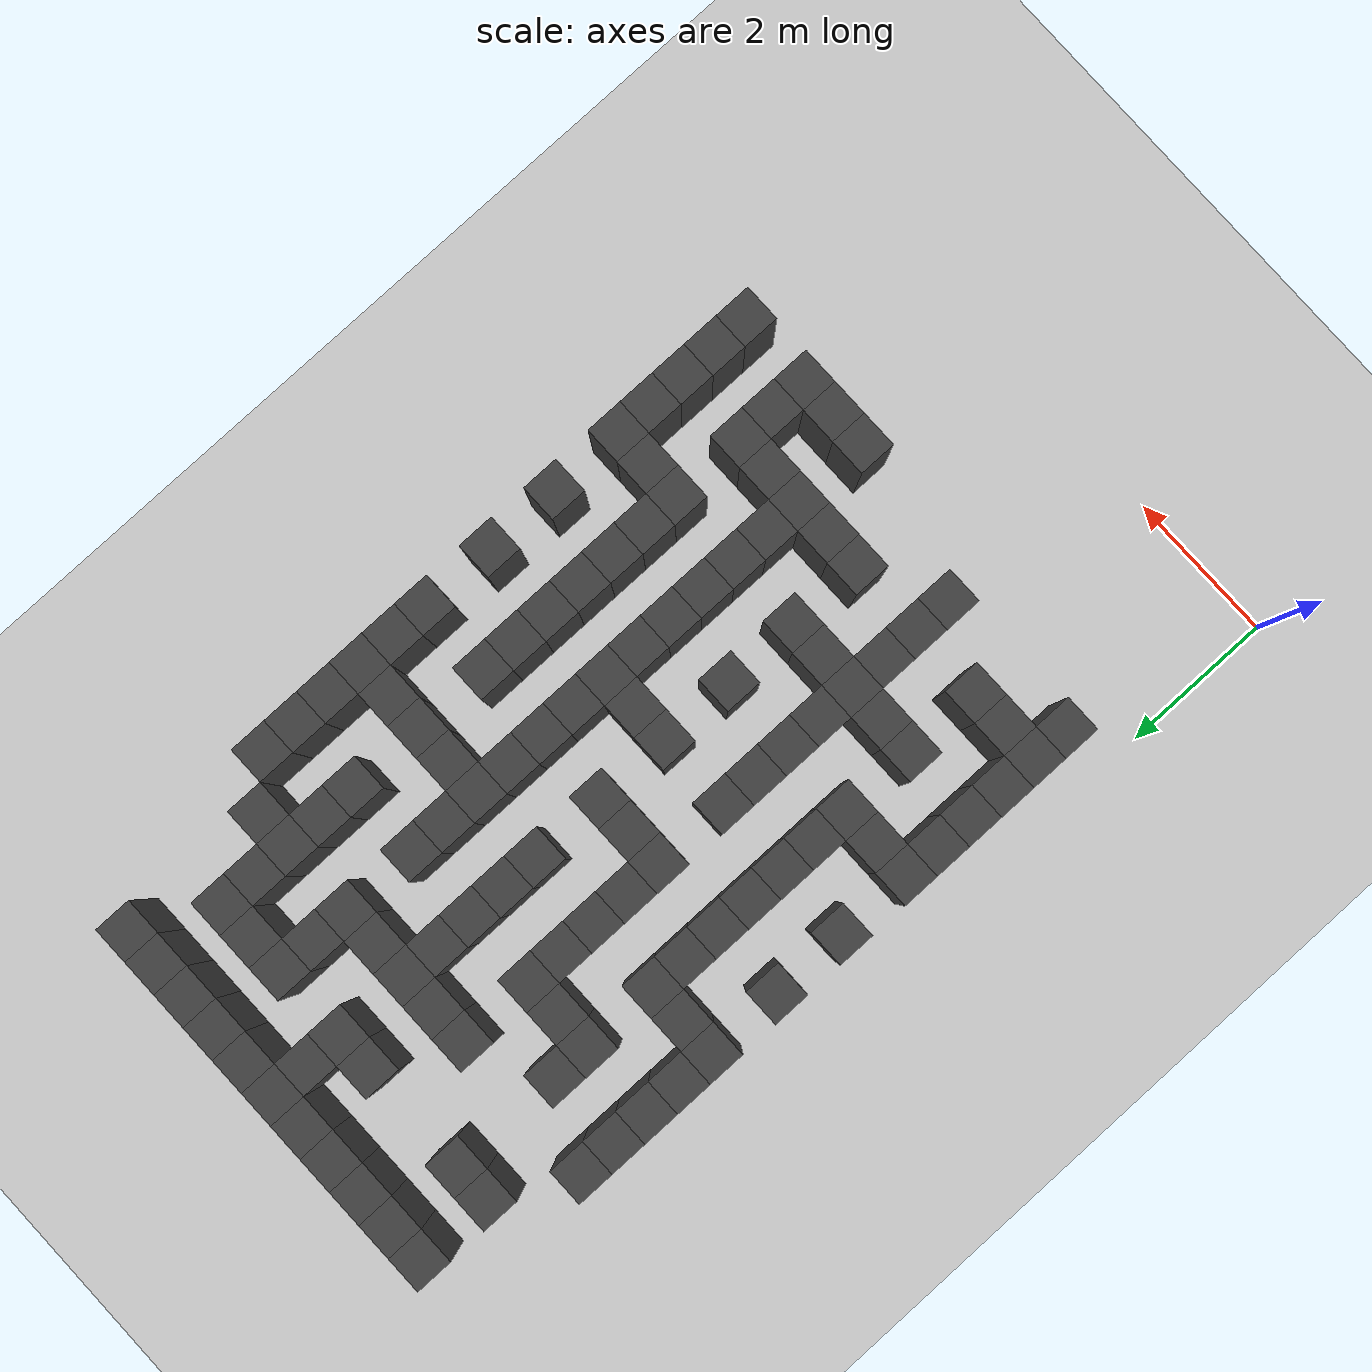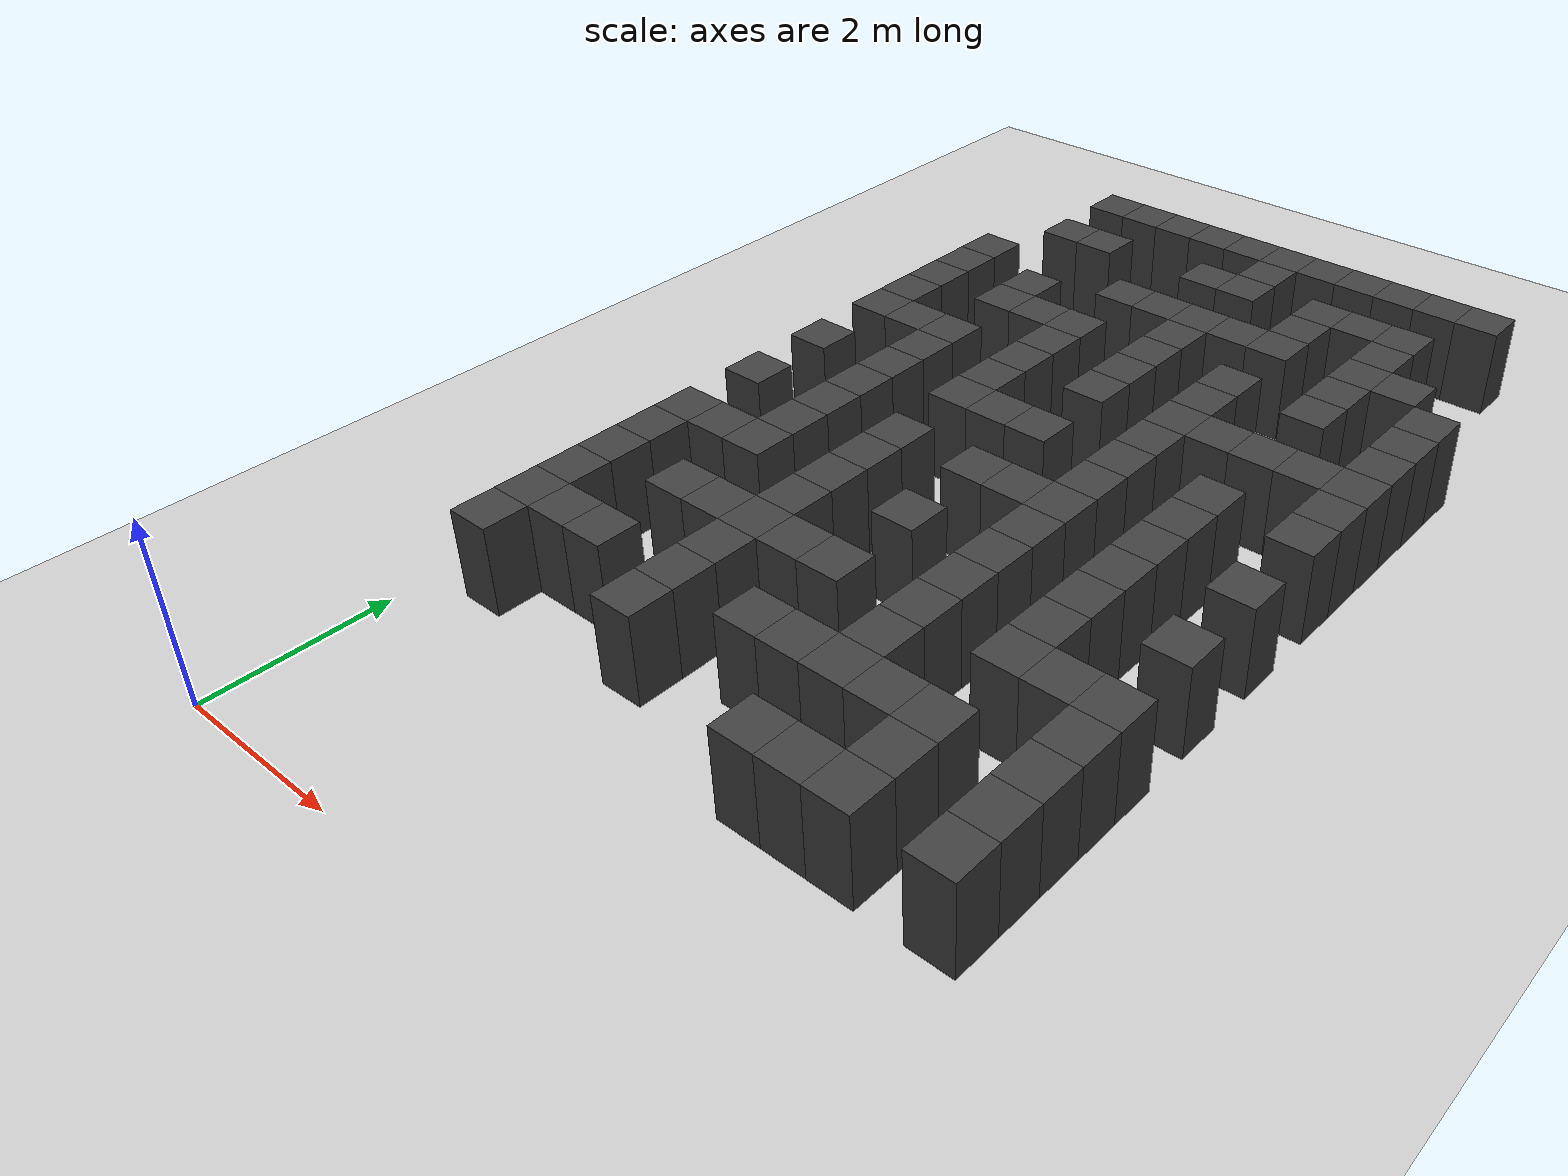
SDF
<sdf version="1.7">
 <world name="map_17663">
  <model name="ground_plane">
   <static>true</static>
   <link name="link">
    <collision name="collision">
     <geometry><plane><normal>0 0 1</normal><size>200 200</size></plane></geometry>
    </collision>
    <visual name="visual">
     <geometry><plane><normal>0 0 1</normal><size>200 200</size></plane></geometry>
     <material><ambient>0.8 0.8 0.8 1</ambient><diffuse>0.8 0.8 0.8 1</diffuse></material>
    </visual>
   </link>
  </model>
  <model name="maze_environment">
   <static>true</static>
   <link name="wall_27">
    <pose>1.250 12.250 0.500 0 0 0</pose>
    <collision name="col"><geometry><box><size>0.5 0.5 1.0</size></box></geometry></collision>
    <visual name="vis">
     <geometry><box><size>0.5 0.5 1.0</size></box></geometry>
     <material><ambient>0.15 0.15 0.15 1</ambient><diffuse>0.25 0.25 0.25 1</diffuse></material>
    </visual>
   </link>
   <link name="wall_28">
    <pose>1.750 12.250 0.500 0 0 0</pose>
    <collision name="col"><geometry><box><size>0.5 0.5 1.0</size></box></geometry></collision>
    <visual name="vis">
     <geometry><box><size>0.5 0.5 1.0</size></box></geometry>
     <material><ambient>0.15 0.15 0.15 1</ambient><diffuse>0.25 0.25 0.25 1</diffuse></material>
    </visual>
   </link>
   <link name="wall_29">
    <pose>2.250 12.250 0.500 0 0 0</pose>
    <collision name="col"><geometry><box><size>0.5 0.5 1.0</size></box></geometry></collision>
    <visual name="vis">
     <geometry><box><size>0.5 0.5 1.0</size></box></geometry>
     <material><ambient>0.15 0.15 0.15 1</ambient><diffuse>0.25 0.25 0.25 1</diffuse></material>
    </visual>
   </link>
   <link name="wall_30">
    <pose>2.750 12.250 0.500 0 0 0</pose>
    <collision name="col"><geometry><box><size>0.5 0.5 1.0</size></box></geometry></collision>
    <visual name="vis">
     <geometry><box><size>0.5 0.5 1.0</size></box></geometry>
     <material><ambient>0.15 0.15 0.15 1</ambient><diffuse>0.25 0.25 0.25 1</diffuse></material>
    </visual>
   </link>
   <link name="wall_31">
    <pose>3.250 12.250 0.500 0 0 0</pose>
    <collision name="col"><geometry><box><size>0.5 0.5 1.0</size></box></geometry></collision>
    <visual name="vis">
     <geometry><box><size>0.5 0.5 1.0</size></box></geometry>
     <material><ambient>0.15 0.15 0.15 1</ambient><diffuse>0.25 0.25 0.25 1</diffuse></material>
    </visual>
   </link>
   <link name="wall_32">
    <pose>3.750 12.250 0.500 0 0 0</pose>
    <collision name="col"><geometry><box><size>0.5 0.5 1.0</size></box></geometry></collision>
    <visual name="vis">
     <geometry><box><size>0.5 0.5 1.0</size></box></geometry>
     <material><ambient>0.15 0.15 0.15 1</ambient><diffuse>0.25 0.25 0.25 1</diffuse></material>
    </visual>
   </link>
   <link name="wall_33">
    <pose>4.250 12.250 0.500 0 0 0</pose>
    <collision name="col"><geometry><box><size>0.5 0.5 1.0</size></box></geometry></collision>
    <visual name="vis">
     <geometry><box><size>0.5 0.5 1.0</size></box></geometry>
     <material><ambient>0.15 0.15 0.15 1</ambient><diffuse>0.25 0.25 0.25 1</diffuse></material>
    </visual>
   </link>
   <link name="wall_34">
    <pose>4.750 12.250 0.500 0 0 0</pose>
    <collision name="col"><geometry><box><size>0.5 0.5 1.0</size></box></geometry></collision>
    <visual name="vis">
     <geometry><box><size>0.5 0.5 1.0</size></box></geometry>
     <material><ambient>0.15 0.15 0.15 1</ambient><diffuse>0.25 0.25 0.25 1</diffuse></material>
    </visual>
   </link>
   <link name="wall_35">
    <pose>5.250 12.250 0.500 0 0 0</pose>
    <collision name="col"><geometry><box><size>0.5 0.5 1.0</size></box></geometry></collision>
    <visual name="vis">
     <geometry><box><size>0.5 0.5 1.0</size></box></geometry>
     <material><ambient>0.15 0.15 0.15 1</ambient><diffuse>0.25 0.25 0.25 1</diffuse></material>
    </visual>
   </link>
   <link name="wall_36">
    <pose>5.750 12.250 0.500 0 0 0</pose>
    <collision name="col"><geometry><box><size>0.5 0.5 1.0</size></box></geometry></collision>
    <visual name="vis">
     <geometry><box><size>0.5 0.5 1.0</size></box></geometry>
     <material><ambient>0.15 0.15 0.15 1</ambient><diffuse>0.25 0.25 0.25 1</diffuse></material>
    </visual>
   </link>
   <link name="wall_37">
    <pose>6.250 12.250 0.500 0 0 0</pose>
    <collision name="col"><geometry><box><size>0.5 0.5 1.0</size></box></geometry></collision>
    <visual name="vis">
     <geometry><box><size>0.5 0.5 1.0</size></box></geometry>
     <material><ambient>0.15 0.15 0.15 1</ambient><diffuse>0.25 0.25 0.25 1</diffuse></material>
    </visual>
   </link>
   <link name="wall_55">
    <pose>3.750 11.750 0.500 0 0 0</pose>
    <collision name="col"><geometry><box><size>0.5 0.5 1.0</size></box></geometry></collision>
    <visual name="vis">
     <geometry><box><size>0.5 0.5 1.0</size></box></geometry>
     <material><ambient>0.15 0.15 0.15 1</ambient><diffuse>0.25 0.25 0.25 1</diffuse></material>
    </visual>
   </link>
   <link name="wall_76">
    <pose>1.250 11.250 0.500 0 0 0</pose>
    <collision name="col"><geometry><box><size>0.5 0.5 1.0</size></box></geometry></collision>
    <visual name="vis">
     <geometry><box><size>0.5 0.5 1.0</size></box></geometry>
     <material><ambient>0.15 0.15 0.15 1</ambient><diffuse>0.25 0.25 0.25 1</diffuse></material>
    </visual>
   </link>
   <link name="wall_77">
    <pose>1.750 11.250 0.500 0 0 0</pose>
    <collision name="col"><geometry><box><size>0.5 0.5 1.0</size></box></geometry></collision>
    <visual name="vis">
     <geometry><box><size>0.5 0.5 1.0</size></box></geometry>
     <material><ambient>0.15 0.15 0.15 1</ambient><diffuse>0.25 0.25 0.25 1</diffuse></material>
    </visual>
   </link>
   <link name="wall_78">
    <pose>3.250 11.250 0.500 0 0 0</pose>
    <collision name="col"><geometry><box><size>0.5 0.5 1.0</size></box></geometry></collision>
    <visual name="vis">
     <geometry><box><size>0.5 0.5 1.0</size></box></geometry>
     <material><ambient>0.15 0.15 0.15 1</ambient><diffuse>0.25 0.25 0.25 1</diffuse></material>
    </visual>
   </link>
   <link name="wall_79">
    <pose>3.750 11.250 0.500 0 0 0</pose>
    <collision name="col"><geometry><box><size>0.5 0.5 1.0</size></box></geometry></collision>
    <visual name="vis">
     <geometry><box><size>0.5 0.5 1.0</size></box></geometry>
     <material><ambient>0.15 0.15 0.15 1</ambient><diffuse>0.25 0.25 0.25 1</diffuse></material>
    </visual>
   </link>
   <link name="wall_80">
    <pose>4.750 11.250 0.500 0 0 0</pose>
    <collision name="col"><geometry><box><size>0.5 0.5 1.0</size></box></geometry></collision>
    <visual name="vis">
     <geometry><box><size>0.5 0.5 1.0</size></box></geometry>
     <material><ambient>0.15 0.15 0.15 1</ambient><diffuse>0.25 0.25 0.25 1</diffuse></material>
    </visual>
   </link>
   <link name="wall_81">
    <pose>5.250 11.250 0.500 0 0 0</pose>
    <collision name="col"><geometry><box><size>0.5 0.5 1.0</size></box></geometry></collision>
    <visual name="vis">
     <geometry><box><size>0.5 0.5 1.0</size></box></geometry>
     <material><ambient>0.15 0.15 0.15 1</ambient><diffuse>0.25 0.25 0.25 1</diffuse></material>
    </visual>
   </link>
   <link name="wall_82">
    <pose>5.750 11.250 0.500 0 0 0</pose>
    <collision name="col"><geometry><box><size>0.5 0.5 1.0</size></box></geometry></collision>
    <visual name="vis">
     <geometry><box><size>0.5 0.5 1.0</size></box></geometry>
     <material><ambient>0.15 0.15 0.15 1</ambient><diffuse>0.25 0.25 0.25 1</diffuse></material>
    </visual>
   </link>
   <link name="wall_99">
    <pose>4.750 10.750 0.500 0 0 0</pose>
    <collision name="col"><geometry><box><size>0.5 0.5 1.0</size></box></geometry></collision>
    <visual name="vis">
     <geometry><box><size>0.5 0.5 1.0</size></box></geometry>
     <material><ambient>0.15 0.15 0.15 1</ambient><diffuse>0.25 0.25 0.25 1</diffuse></material>
    </visual>
   </link>
   <link name="wall_100">
    <pose>5.750 10.750 0.500 0 0 0</pose>
    <collision name="col"><geometry><box><size>0.5 0.5 1.0</size></box></geometry></collision>
    <visual name="vis">
     <geometry><box><size>0.5 0.5 1.0</size></box></geometry>
     <material><ambient>0.15 0.15 0.15 1</ambient><diffuse>0.25 0.25 0.25 1</diffuse></material>
    </visual>
   </link>
   <link name="wall_122">
    <pose>0.750 10.250 0.500 0 0 0</pose>
    <collision name="col"><geometry><box><size>0.5 0.5 1.0</size></box></geometry></collision>
    <visual name="vis">
     <geometry><box><size>0.5 0.5 1.0</size></box></geometry>
     <material><ambient>0.15 0.15 0.15 1</ambient><diffuse>0.25 0.25 0.25 1</diffuse></material>
    </visual>
   </link>
   <link name="wall_123">
    <pose>2.750 10.250 0.500 0 0 0</pose>
    <collision name="col"><geometry><box><size>0.5 0.5 1.0</size></box></geometry></collision>
    <visual name="vis">
     <geometry><box><size>0.5 0.5 1.0</size></box></geometry>
     <material><ambient>0.15 0.15 0.15 1</ambient><diffuse>0.25 0.25 0.25 1</diffuse></material>
    </visual>
   </link>
   <link name="wall_124">
    <pose>3.250 10.250 0.500 0 0 0</pose>
    <collision name="col"><geometry><box><size>0.5 0.5 1.0</size></box></geometry></collision>
    <visual name="vis">
     <geometry><box><size>0.5 0.5 1.0</size></box></geometry>
     <material><ambient>0.15 0.15 0.15 1</ambient><diffuse>0.25 0.25 0.25 1</diffuse></material>
    </visual>
   </link>
   <link name="wall_125">
    <pose>3.750 10.250 0.500 0 0 0</pose>
    <collision name="col"><geometry><box><size>0.5 0.5 1.0</size></box></geometry></collision>
    <visual name="vis">
     <geometry><box><size>0.5 0.5 1.0</size></box></geometry>
     <material><ambient>0.15 0.15 0.15 1</ambient><diffuse>0.25 0.25 0.25 1</diffuse></material>
    </visual>
   </link>
   <link name="wall_126">
    <pose>4.250 10.250 0.500 0 0 0</pose>
    <collision name="col"><geometry><box><size>0.5 0.5 1.0</size></box></geometry></collision>
    <visual name="vis">
     <geometry><box><size>0.5 0.5 1.0</size></box></geometry>
     <material><ambient>0.15 0.15 0.15 1</ambient><diffuse>0.25 0.25 0.25 1</diffuse></material>
    </visual>
   </link>
   <link name="wall_127">
    <pose>4.750 10.250 0.500 0 0 0</pose>
    <collision name="col"><geometry><box><size>0.5 0.5 1.0</size></box></geometry></collision>
    <visual name="vis">
     <geometry><box><size>0.5 0.5 1.0</size></box></geometry>
     <material><ambient>0.15 0.15 0.15 1</ambient><diffuse>0.25 0.25 0.25 1</diffuse></material>
    </visual>
   </link>
   <link name="wall_128">
    <pose>5.750 10.250 0.500 0 0 0</pose>
    <collision name="col"><geometry><box><size>0.5 0.5 1.0</size></box></geometry></collision>
    <visual name="vis">
     <geometry><box><size>0.5 0.5 1.0</size></box></geometry>
     <material><ambient>0.15 0.15 0.15 1</ambient><diffuse>0.25 0.25 0.25 1</diffuse></material>
    </visual>
   </link>
   <link name="wall_129">
    <pose>6.250 10.250 0.500 0 0 0</pose>
    <collision name="col"><geometry><box><size>0.5 0.5 1.0</size></box></geometry></collision>
    <visual name="vis">
     <geometry><box><size>0.5 0.5 1.0</size></box></geometry>
     <material><ambient>0.15 0.15 0.15 1</ambient><diffuse>0.25 0.25 0.25 1</diffuse></material>
    </visual>
   </link>
   <link name="wall_146">
    <pose>0.750 9.750 0.500 0 0 0</pose>
    <collision name="col"><geometry><box><size>0.5 0.5 1.0</size></box></geometry></collision>
    <visual name="vis">
     <geometry><box><size>0.5 0.5 1.0</size></box></geometry>
     <material><ambient>0.15 0.15 0.15 1</ambient><diffuse>0.25 0.25 0.25 1</diffuse></material>
    </visual>
   </link>
   <link name="wall_147">
    <pose>1.750 9.750 0.500 0 0 0</pose>
    <collision name="col"><geometry><box><size>0.5 0.5 1.0</size></box></geometry></collision>
    <visual name="vis">
     <geometry><box><size>0.5 0.5 1.0</size></box></geometry>
     <material><ambient>0.15 0.15 0.15 1</ambient><diffuse>0.25 0.25 0.25 1</diffuse></material>
    </visual>
   </link>
   <link name="wall_148">
    <pose>3.750 9.750 0.500 0 0 0</pose>
    <collision name="col"><geometry><box><size>0.5 0.5 1.0</size></box></geometry></collision>
    <visual name="vis">
     <geometry><box><size>0.5 0.5 1.0</size></box></geometry>
     <material><ambient>0.15 0.15 0.15 1</ambient><diffuse>0.25 0.25 0.25 1</diffuse></material>
    </visual>
   </link>
   <link name="wall_149">
    <pose>5.750 9.750 0.500 0 0 0</pose>
    <collision name="col"><geometry><box><size>0.5 0.5 1.0</size></box></geometry></collision>
    <visual name="vis">
     <geometry><box><size>0.5 0.5 1.0</size></box></geometry>
     <material><ambient>0.15 0.15 0.15 1</ambient><diffuse>0.25 0.25 0.25 1</diffuse></material>
    </visual>
   </link>
   <link name="wall_150">
    <pose>6.750 9.750 0.500 0 0 0</pose>
    <collision name="col"><geometry><box><size>0.5 0.5 1.0</size></box></geometry></collision>
    <visual name="vis">
     <geometry><box><size>0.5 0.5 1.0</size></box></geometry>
     <material><ambient>0.15 0.15 0.15 1</ambient><diffuse>0.25 0.25 0.25 1</diffuse></material>
    </visual>
   </link>
   <link name="wall_173">
    <pose>0.750 9.250 0.500 0 0 0</pose>
    <collision name="col"><geometry><box><size>0.5 0.5 1.0</size></box></geometry></collision>
    <visual name="vis">
     <geometry><box><size>0.5 0.5 1.0</size></box></geometry>
     <material><ambient>0.15 0.15 0.15 1</ambient><diffuse>0.25 0.25 0.25 1</diffuse></material>
    </visual>
   </link>
   <link name="wall_174">
    <pose>1.750 9.250 0.500 0 0 0</pose>
    <collision name="col"><geometry><box><size>0.5 0.5 1.0</size></box></geometry></collision>
    <visual name="vis">
     <geometry><box><size>0.5 0.5 1.0</size></box></geometry>
     <material><ambient>0.15 0.15 0.15 1</ambient><diffuse>0.25 0.25 0.25 1</diffuse></material>
    </visual>
   </link>
   <link name="wall_175">
    <pose>2.250 9.250 0.500 0 0 0</pose>
    <collision name="col"><geometry><box><size>0.5 0.5 1.0</size></box></geometry></collision>
    <visual name="vis">
     <geometry><box><size>0.5 0.5 1.0</size></box></geometry>
     <material><ambient>0.15 0.15 0.15 1</ambient><diffuse>0.25 0.25 0.25 1</diffuse></material>
    </visual>
   </link>
   <link name="wall_176">
    <pose>2.750 9.250 0.500 0 0 0</pose>
    <collision name="col"><geometry><box><size>0.5 0.5 1.0</size></box></geometry></collision>
    <visual name="vis">
     <geometry><box><size>0.5 0.5 1.0</size></box></geometry>
     <material><ambient>0.15 0.15 0.15 1</ambient><diffuse>0.25 0.25 0.25 1</diffuse></material>
    </visual>
   </link>
   <link name="wall_177">
    <pose>3.750 9.250 0.500 0 0 0</pose>
    <collision name="col"><geometry><box><size>0.5 0.5 1.0</size></box></geometry></collision>
    <visual name="vis">
     <geometry><box><size>0.5 0.5 1.0</size></box></geometry>
     <material><ambient>0.15 0.15 0.15 1</ambient><diffuse>0.25 0.25 0.25 1</diffuse></material>
    </visual>
   </link>
   <link name="wall_178">
    <pose>4.750 9.250 0.500 0 0 0</pose>
    <collision name="col"><geometry><box><size>0.5 0.5 1.0</size></box></geometry></collision>
    <visual name="vis">
     <geometry><box><size>0.5 0.5 1.0</size></box></geometry>
     <material><ambient>0.15 0.15 0.15 1</ambient><diffuse>0.25 0.25 0.25 1</diffuse></material>
    </visual>
   </link>
   <link name="wall_179">
    <pose>5.750 9.250 0.500 0 0 0</pose>
    <collision name="col"><geometry><box><size>0.5 0.5 1.0</size></box></geometry></collision>
    <visual name="vis">
     <geometry><box><size>0.5 0.5 1.0</size></box></geometry>
     <material><ambient>0.15 0.15 0.15 1</ambient><diffuse>0.25 0.25 0.25 1</diffuse></material>
    </visual>
   </link>
   <link name="wall_180">
    <pose>6.750 9.250 0.500 0 0 0</pose>
    <collision name="col"><geometry><box><size>0.5 0.5 1.0</size></box></geometry></collision>
    <visual name="vis">
     <geometry><box><size>0.5 0.5 1.0</size></box></geometry>
     <material><ambient>0.15 0.15 0.15 1</ambient><diffuse>0.25 0.25 0.25 1</diffuse></material>
    </visual>
   </link>
   <link name="wall_194">
    <pose>0.750 8.750 0.500 0 0 0</pose>
    <collision name="col"><geometry><box><size>0.5 0.5 1.0</size></box></geometry></collision>
    <visual name="vis">
     <geometry><box><size>0.5 0.5 1.0</size></box></geometry>
     <material><ambient>0.15 0.15 0.15 1</ambient><diffuse>0.25 0.25 0.25 1</diffuse></material>
    </visual>
   </link>
   <link name="wall_195">
    <pose>2.750 8.750 0.500 0 0 0</pose>
    <collision name="col"><geometry><box><size>0.5 0.5 1.0</size></box></geometry></collision>
    <visual name="vis">
     <geometry><box><size>0.5 0.5 1.0</size></box></geometry>
     <material><ambient>0.15 0.15 0.15 1</ambient><diffuse>0.25 0.25 0.25 1</diffuse></material>
    </visual>
   </link>
   <link name="wall_196">
    <pose>3.750 8.750 0.500 0 0 0</pose>
    <collision name="col"><geometry><box><size>0.5 0.5 1.0</size></box></geometry></collision>
    <visual name="vis">
     <geometry><box><size>0.5 0.5 1.0</size></box></geometry>
     <material><ambient>0.15 0.15 0.15 1</ambient><diffuse>0.25 0.25 0.25 1</diffuse></material>
    </visual>
   </link>
   <link name="wall_197">
    <pose>4.750 8.750 0.500 0 0 0</pose>
    <collision name="col"><geometry><box><size>0.5 0.5 1.0</size></box></geometry></collision>
    <visual name="vis">
     <geometry><box><size>0.5 0.5 1.0</size></box></geometry>
     <material><ambient>0.15 0.15 0.15 1</ambient><diffuse>0.25 0.25 0.25 1</diffuse></material>
    </visual>
   </link>
   <link name="wall_198">
    <pose>6.750 8.750 0.500 0 0 0</pose>
    <collision name="col"><geometry><box><size>0.5 0.5 1.0</size></box></geometry></collision>
    <visual name="vis">
     <geometry><box><size>0.5 0.5 1.0</size></box></geometry>
     <material><ambient>0.15 0.15 0.15 1</ambient><diffuse>0.25 0.25 0.25 1</diffuse></material>
    </visual>
   </link>
   <link name="wall_223">
    <pose>0.750 8.250 0.500 0 0 0</pose>
    <collision name="col"><geometry><box><size>0.5 0.5 1.0</size></box></geometry></collision>
    <visual name="vis">
     <geometry><box><size>0.5 0.5 1.0</size></box></geometry>
     <material><ambient>0.15 0.15 0.15 1</ambient><diffuse>0.25 0.25 0.25 1</diffuse></material>
    </visual>
   </link>
   <link name="wall_224">
    <pose>1.250 8.250 0.500 0 0 0</pose>
    <collision name="col"><geometry><box><size>0.5 0.5 1.0</size></box></geometry></collision>
    <visual name="vis">
     <geometry><box><size>0.5 0.5 1.0</size></box></geometry>
     <material><ambient>0.15 0.15 0.15 1</ambient><diffuse>0.25 0.25 0.25 1</diffuse></material>
    </visual>
   </link>
   <link name="wall_225">
    <pose>1.750 8.250 0.500 0 0 0</pose>
    <collision name="col"><geometry><box><size>0.5 0.5 1.0</size></box></geometry></collision>
    <visual name="vis">
     <geometry><box><size>0.5 0.5 1.0</size></box></geometry>
     <material><ambient>0.15 0.15 0.15 1</ambient><diffuse>0.25 0.25 0.25 1</diffuse></material>
    </visual>
   </link>
   <link name="wall_226">
    <pose>2.750 8.250 0.500 0 0 0</pose>
    <collision name="col"><geometry><box><size>0.5 0.5 1.0</size></box></geometry></collision>
    <visual name="vis">
     <geometry><box><size>0.5 0.5 1.0</size></box></geometry>
     <material><ambient>0.15 0.15 0.15 1</ambient><diffuse>0.25 0.25 0.25 1</diffuse></material>
    </visual>
   </link>
   <link name="wall_227">
    <pose>3.750 8.250 0.500 0 0 0</pose>
    <collision name="col"><geometry><box><size>0.5 0.5 1.0</size></box></geometry></collision>
    <visual name="vis">
     <geometry><box><size>0.5 0.5 1.0</size></box></geometry>
     <material><ambient>0.15 0.15 0.15 1</ambient><diffuse>0.25 0.25 0.25 1</diffuse></material>
    </visual>
   </link>
   <link name="wall_228">
    <pose>4.750 8.250 0.500 0 0 0</pose>
    <collision name="col"><geometry><box><size>0.5 0.5 1.0</size></box></geometry></collision>
    <visual name="vis">
     <geometry><box><size>0.5 0.5 1.0</size></box></geometry>
     <material><ambient>0.15 0.15 0.15 1</ambient><diffuse>0.25 0.25 0.25 1</diffuse></material>
    </visual>
   </link>
   <link name="wall_229">
    <pose>5.250 8.250 0.500 0 0 0</pose>
    <collision name="col"><geometry><box><size>0.5 0.5 1.0</size></box></geometry></collision>
    <visual name="vis">
     <geometry><box><size>0.5 0.5 1.0</size></box></geometry>
     <material><ambient>0.15 0.15 0.15 1</ambient><diffuse>0.25 0.25 0.25 1</diffuse></material>
    </visual>
   </link>
   <link name="wall_230">
    <pose>5.750 8.250 0.500 0 0 0</pose>
    <collision name="col"><geometry><box><size>0.5 0.5 1.0</size></box></geometry></collision>
    <visual name="vis">
     <geometry><box><size>0.5 0.5 1.0</size></box></geometry>
     <material><ambient>0.15 0.15 0.15 1</ambient><diffuse>0.25 0.25 0.25 1</diffuse></material>
    </visual>
   </link>
   <link name="wall_231">
    <pose>6.250 8.250 0.500 0 0 0</pose>
    <collision name="col"><geometry><box><size>0.5 0.5 1.0</size></box></geometry></collision>
    <visual name="vis">
     <geometry><box><size>0.5 0.5 1.0</size></box></geometry>
     <material><ambient>0.15 0.15 0.15 1</ambient><diffuse>0.25 0.25 0.25 1</diffuse></material>
    </visual>
   </link>
   <link name="wall_232">
    <pose>6.750 8.250 0.500 0 0 0</pose>
    <collision name="col"><geometry><box><size>0.5 0.5 1.0</size></box></geometry></collision>
    <visual name="vis">
     <geometry><box><size>0.5 0.5 1.0</size></box></geometry>
     <material><ambient>0.15 0.15 0.15 1</ambient><diffuse>0.25 0.25 0.25 1</diffuse></material>
    </visual>
   </link>
   <link name="wall_246">
    <pose>1.750 7.750 0.500 0 0 0</pose>
    <collision name="col"><geometry><box><size>0.5 0.5 1.0</size></box></geometry></collision>
    <visual name="vis">
     <geometry><box><size>0.5 0.5 1.0</size></box></geometry>
     <material><ambient>0.15 0.15 0.15 1</ambient><diffuse>0.25 0.25 0.25 1</diffuse></material>
    </visual>
   </link>
   <link name="wall_247">
    <pose>2.750 7.750 0.500 0 0 0</pose>
    <collision name="col"><geometry><box><size>0.5 0.5 1.0</size></box></geometry></collision>
    <visual name="vis">
     <geometry><box><size>0.5 0.5 1.0</size></box></geometry>
     <material><ambient>0.15 0.15 0.15 1</ambient><diffuse>0.25 0.25 0.25 1</diffuse></material>
    </visual>
   </link>
   <link name="wall_248">
    <pose>4.750 7.750 0.500 0 0 0</pose>
    <collision name="col"><geometry><box><size>0.5 0.5 1.0</size></box></geometry></collision>
    <visual name="vis">
     <geometry><box><size>0.5 0.5 1.0</size></box></geometry>
     <material><ambient>0.15 0.15 0.15 1</ambient><diffuse>0.25 0.25 0.25 1</diffuse></material>
    </visual>
   </link>
   <link name="wall_249">
    <pose>6.750 7.750 0.500 0 0 0</pose>
    <collision name="col"><geometry><box><size>0.5 0.5 1.0</size></box></geometry></collision>
    <visual name="vis">
     <geometry><box><size>0.5 0.5 1.0</size></box></geometry>
     <material><ambient>0.15 0.15 0.15 1</ambient><diffuse>0.25 0.25 0.25 1</diffuse></material>
    </visual>
   </link>
   <link name="wall_272">
    <pose>0.750 7.250 0.500 0 0 0</pose>
    <collision name="col"><geometry><box><size>0.5 0.5 1.0</size></box></geometry></collision>
    <visual name="vis">
     <geometry><box><size>0.5 0.5 1.0</size></box></geometry>
     <material><ambient>0.15 0.15 0.15 1</ambient><diffuse>0.25 0.25 0.25 1</diffuse></material>
    </visual>
   </link>
   <link name="wall_273">
    <pose>1.750 7.250 0.500 0 0 0</pose>
    <collision name="col"><geometry><box><size>0.5 0.5 1.0</size></box></geometry></collision>
    <visual name="vis">
     <geometry><box><size>0.5 0.5 1.0</size></box></geometry>
     <material><ambient>0.15 0.15 0.15 1</ambient><diffuse>0.25 0.25 0.25 1</diffuse></material>
    </visual>
   </link>
   <link name="wall_274">
    <pose>2.750 7.250 0.500 0 0 0</pose>
    <collision name="col"><geometry><box><size>0.5 0.5 1.0</size></box></geometry></collision>
    <visual name="vis">
     <geometry><box><size>0.5 0.5 1.0</size></box></geometry>
     <material><ambient>0.15 0.15 0.15 1</ambient><diffuse>0.25 0.25 0.25 1</diffuse></material>
    </visual>
   </link>
   <link name="wall_275">
    <pose>3.250 7.250 0.500 0 0 0</pose>
    <collision name="col"><geometry><box><size>0.5 0.5 1.0</size></box></geometry></collision>
    <visual name="vis">
     <geometry><box><size>0.5 0.5 1.0</size></box></geometry>
     <material><ambient>0.15 0.15 0.15 1</ambient><diffuse>0.25 0.25 0.25 1</diffuse></material>
    </visual>
   </link>
   <link name="wall_276">
    <pose>3.750 7.250 0.500 0 0 0</pose>
    <collision name="col"><geometry><box><size>0.5 0.5 1.0</size></box></geometry></collision>
    <visual name="vis">
     <geometry><box><size>0.5 0.5 1.0</size></box></geometry>
     <material><ambient>0.15 0.15 0.15 1</ambient><diffuse>0.25 0.25 0.25 1</diffuse></material>
    </visual>
   </link>
   <link name="wall_277">
    <pose>4.750 7.250 0.500 0 0 0</pose>
    <collision name="col"><geometry><box><size>0.5 0.5 1.0</size></box></geometry></collision>
    <visual name="vis">
     <geometry><box><size>0.5 0.5 1.0</size></box></geometry>
     <material><ambient>0.15 0.15 0.15 1</ambient><diffuse>0.25 0.25 0.25 1</diffuse></material>
    </visual>
   </link>
   <link name="wall_278">
    <pose>5.750 7.250 0.500 0 0 0</pose>
    <collision name="col"><geometry><box><size>0.5 0.5 1.0</size></box></geometry></collision>
    <visual name="vis">
     <geometry><box><size>0.5 0.5 1.0</size></box></geometry>
     <material><ambient>0.15 0.15 0.15 1</ambient><diffuse>0.25 0.25 0.25 1</diffuse></material>
    </visual>
   </link>
   <link name="wall_279">
    <pose>6.750 7.250 0.500 0 0 0</pose>
    <collision name="col"><geometry><box><size>0.5 0.5 1.0</size></box></geometry></collision>
    <visual name="vis">
     <geometry><box><size>0.5 0.5 1.0</size></box></geometry>
     <material><ambient>0.15 0.15 0.15 1</ambient><diffuse>0.25 0.25 0.25 1</diffuse></material>
    </visual>
   </link>
   <link name="wall_294">
    <pose>1.750 6.750 0.500 0 0 0</pose>
    <collision name="col"><geometry><box><size>0.5 0.5 1.0</size></box></geometry></collision>
    <visual name="vis">
     <geometry><box><size>0.5 0.5 1.0</size></box></geometry>
     <material><ambient>0.15 0.15 0.15 1</ambient><diffuse>0.25 0.25 0.25 1</diffuse></material>
    </visual>
   </link>
   <link name="wall_295">
    <pose>4.750 6.750 0.500 0 0 0</pose>
    <collision name="col"><geometry><box><size>0.5 0.5 1.0</size></box></geometry></collision>
    <visual name="vis">
     <geometry><box><size>0.5 0.5 1.0</size></box></geometry>
     <material><ambient>0.15 0.15 0.15 1</ambient><diffuse>0.25 0.25 0.25 1</diffuse></material>
    </visual>
   </link>
   <link name="wall_296">
    <pose>5.750 6.750 0.500 0 0 0</pose>
    <collision name="col"><geometry><box><size>0.5 0.5 1.0</size></box></geometry></collision>
    <visual name="vis">
     <geometry><box><size>0.5 0.5 1.0</size></box></geometry>
     <material><ambient>0.15 0.15 0.15 1</ambient><diffuse>0.25 0.25 0.25 1</diffuse></material>
    </visual>
   </link>
   <link name="wall_317">
    <pose>0.750 6.250 0.500 0 0 0</pose>
    <collision name="col"><geometry><box><size>0.5 0.5 1.0</size></box></geometry></collision>
    <visual name="vis">
     <geometry><box><size>0.5 0.5 1.0</size></box></geometry>
     <material><ambient>0.15 0.15 0.15 1</ambient><diffuse>0.25 0.25 0.25 1</diffuse></material>
    </visual>
   </link>
   <link name="wall_318">
    <pose>1.750 6.250 0.500 0 0 0</pose>
    <collision name="col"><geometry><box><size>0.5 0.5 1.0</size></box></geometry></collision>
    <visual name="vis">
     <geometry><box><size>0.5 0.5 1.0</size></box></geometry>
     <material><ambient>0.15 0.15 0.15 1</ambient><diffuse>0.25 0.25 0.25 1</diffuse></material>
    </visual>
   </link>
   <link name="wall_319">
    <pose>2.750 6.250 0.500 0 0 0</pose>
    <collision name="col"><geometry><box><size>0.5 0.5 1.0</size></box></geometry></collision>
    <visual name="vis">
     <geometry><box><size>0.5 0.5 1.0</size></box></geometry>
     <material><ambient>0.15 0.15 0.15 1</ambient><diffuse>0.25 0.25 0.25 1</diffuse></material>
    </visual>
   </link>
   <link name="wall_320">
    <pose>3.750 6.250 0.500 0 0 0</pose>
    <collision name="col"><geometry><box><size>0.5 0.5 1.0</size></box></geometry></collision>
    <visual name="vis">
     <geometry><box><size>0.5 0.5 1.0</size></box></geometry>
     <material><ambient>0.15 0.15 0.15 1</ambient><diffuse>0.25 0.25 0.25 1</diffuse></material>
    </visual>
   </link>
   <link name="wall_321">
    <pose>4.250 6.250 0.500 0 0 0</pose>
    <collision name="col"><geometry><box><size>0.5 0.5 1.0</size></box></geometry></collision>
    <visual name="vis">
     <geometry><box><size>0.5 0.5 1.0</size></box></geometry>
     <material><ambient>0.15 0.15 0.15 1</ambient><diffuse>0.25 0.25 0.25 1</diffuse></material>
    </visual>
   </link>
   <link name="wall_322">
    <pose>4.750 6.250 0.500 0 0 0</pose>
    <collision name="col"><geometry><box><size>0.5 0.5 1.0</size></box></geometry></collision>
    <visual name="vis">
     <geometry><box><size>0.5 0.5 1.0</size></box></geometry>
     <material><ambient>0.15 0.15 0.15 1</ambient><diffuse>0.25 0.25 0.25 1</diffuse></material>
    </visual>
   </link>
   <link name="wall_323">
    <pose>5.750 6.250 0.500 0 0 0</pose>
    <collision name="col"><geometry><box><size>0.5 0.5 1.0</size></box></geometry></collision>
    <visual name="vis">
     <geometry><box><size>0.5 0.5 1.0</size></box></geometry>
     <material><ambient>0.15 0.15 0.15 1</ambient><diffuse>0.25 0.25 0.25 1</diffuse></material>
    </visual>
   </link>
   <link name="wall_324">
    <pose>6.750 6.250 0.500 0 0 0</pose>
    <collision name="col"><geometry><box><size>0.5 0.5 1.0</size></box></geometry></collision>
    <visual name="vis">
     <geometry><box><size>0.5 0.5 1.0</size></box></geometry>
     <material><ambient>0.15 0.15 0.15 1</ambient><diffuse>0.25 0.25 0.25 1</diffuse></material>
    </visual>
   </link>
   <link name="wall_339">
    <pose>1.750 5.750 0.500 0 0 0</pose>
    <collision name="col"><geometry><box><size>0.5 0.5 1.0</size></box></geometry></collision>
    <visual name="vis">
     <geometry><box><size>0.5 0.5 1.0</size></box></geometry>
     <material><ambient>0.15 0.15 0.15 1</ambient><diffuse>0.25 0.25 0.25 1</diffuse></material>
    </visual>
   </link>
   <link name="wall_340">
    <pose>2.750 5.750 0.500 0 0 0</pose>
    <collision name="col"><geometry><box><size>0.5 0.5 1.0</size></box></geometry></collision>
    <visual name="vis">
     <geometry><box><size>0.5 0.5 1.0</size></box></geometry>
     <material><ambient>0.15 0.15 0.15 1</ambient><diffuse>0.25 0.25 0.25 1</diffuse></material>
    </visual>
   </link>
   <link name="wall_341">
    <pose>4.750 5.750 0.500 0 0 0</pose>
    <collision name="col"><geometry><box><size>0.5 0.5 1.0</size></box></geometry></collision>
    <visual name="vis">
     <geometry><box><size>0.5 0.5 1.0</size></box></geometry>
     <material><ambient>0.15 0.15 0.15 1</ambient><diffuse>0.25 0.25 0.25 1</diffuse></material>
    </visual>
   </link>
   <link name="wall_342">
    <pose>5.750 5.750 0.500 0 0 0</pose>
    <collision name="col"><geometry><box><size>0.5 0.5 1.0</size></box></geometry></collision>
    <visual name="vis">
     <geometry><box><size>0.5 0.5 1.0</size></box></geometry>
     <material><ambient>0.15 0.15 0.15 1</ambient><diffuse>0.25 0.25 0.25 1</diffuse></material>
    </visual>
   </link>
   <link name="wall_367">
    <pose>0.750 5.250 0.500 0 0 0</pose>
    <collision name="col"><geometry><box><size>0.5 0.5 1.0</size></box></geometry></collision>
    <visual name="vis">
     <geometry><box><size>0.5 0.5 1.0</size></box></geometry>
     <material><ambient>0.15 0.15 0.15 1</ambient><diffuse>0.25 0.25 0.25 1</diffuse></material>
    </visual>
   </link>
   <link name="wall_368">
    <pose>1.250 5.250 0.500 0 0 0</pose>
    <collision name="col"><geometry><box><size>0.5 0.5 1.0</size></box></geometry></collision>
    <visual name="vis">
     <geometry><box><size>0.5 0.5 1.0</size></box></geometry>
     <material><ambient>0.15 0.15 0.15 1</ambient><diffuse>0.25 0.25 0.25 1</diffuse></material>
    </visual>
   </link>
   <link name="wall_369">
    <pose>1.750 5.250 0.500 0 0 0</pose>
    <collision name="col"><geometry><box><size>0.5 0.5 1.0</size></box></geometry></collision>
    <visual name="vis">
     <geometry><box><size>0.5 0.5 1.0</size></box></geometry>
     <material><ambient>0.15 0.15 0.15 1</ambient><diffuse>0.25 0.25 0.25 1</diffuse></material>
    </visual>
   </link>
   <link name="wall_370">
    <pose>2.750 5.250 0.500 0 0 0</pose>
    <collision name="col"><geometry><box><size>0.5 0.5 1.0</size></box></geometry></collision>
    <visual name="vis">
     <geometry><box><size>0.5 0.5 1.0</size></box></geometry>
     <material><ambient>0.15 0.15 0.15 1</ambient><diffuse>0.25 0.25 0.25 1</diffuse></material>
    </visual>
   </link>
   <link name="wall_371">
    <pose>3.750 5.250 0.500 0 0 0</pose>
    <collision name="col"><geometry><box><size>0.5 0.5 1.0</size></box></geometry></collision>
    <visual name="vis">
     <geometry><box><size>0.5 0.5 1.0</size></box></geometry>
     <material><ambient>0.15 0.15 0.15 1</ambient><diffuse>0.25 0.25 0.25 1</diffuse></material>
    </visual>
   </link>
   <link name="wall_372">
    <pose>4.750 5.250 0.500 0 0 0</pose>
    <collision name="col"><geometry><box><size>0.5 0.5 1.0</size></box></geometry></collision>
    <visual name="vis">
     <geometry><box><size>0.5 0.5 1.0</size></box></geometry>
     <material><ambient>0.15 0.15 0.15 1</ambient><diffuse>0.25 0.25 0.25 1</diffuse></material>
    </visual>
   </link>
   <link name="wall_373">
    <pose>5.750 5.250 0.500 0 0 0</pose>
    <collision name="col"><geometry><box><size>0.5 0.5 1.0</size></box></geometry></collision>
    <visual name="vis">
     <geometry><box><size>0.5 0.5 1.0</size></box></geometry>
     <material><ambient>0.15 0.15 0.15 1</ambient><diffuse>0.25 0.25 0.25 1</diffuse></material>
    </visual>
   </link>
   <link name="wall_374">
    <pose>6.750 5.250 0.500 0 0 0</pose>
    <collision name="col"><geometry><box><size>0.5 0.5 1.0</size></box></geometry></collision>
    <visual name="vis">
     <geometry><box><size>0.5 0.5 1.0</size></box></geometry>
     <material><ambient>0.15 0.15 0.15 1</ambient><diffuse>0.25 0.25 0.25 1</diffuse></material>
    </visual>
   </link>
   <link name="wall_391">
    <pose>0.750 4.750 0.500 0 0 0</pose>
    <collision name="col"><geometry><box><size>0.5 0.5 1.0</size></box></geometry></collision>
    <visual name="vis">
     <geometry><box><size>0.5 0.5 1.0</size></box></geometry>
     <material><ambient>0.15 0.15 0.15 1</ambient><diffuse>0.25 0.25 0.25 1</diffuse></material>
    </visual>
   </link>
   <link name="wall_392">
    <pose>2.750 4.750 0.500 0 0 0</pose>
    <collision name="col"><geometry><box><size>0.5 0.5 1.0</size></box></geometry></collision>
    <visual name="vis">
     <geometry><box><size>0.5 0.5 1.0</size></box></geometry>
     <material><ambient>0.15 0.15 0.15 1</ambient><diffuse>0.25 0.25 0.25 1</diffuse></material>
    </visual>
   </link>
   <link name="wall_393">
    <pose>4.750 4.750 0.500 0 0 0</pose>
    <collision name="col"><geometry><box><size>0.5 0.5 1.0</size></box></geometry></collision>
    <visual name="vis">
     <geometry><box><size>0.5 0.5 1.0</size></box></geometry>
     <material><ambient>0.15 0.15 0.15 1</ambient><diffuse>0.25 0.25 0.25 1</diffuse></material>
    </visual>
   </link>
   <link name="wall_394">
    <pose>5.750 4.750 0.500 0 0 0</pose>
    <collision name="col"><geometry><box><size>0.5 0.5 1.0</size></box></geometry></collision>
    <visual name="vis">
     <geometry><box><size>0.5 0.5 1.0</size></box></geometry>
     <material><ambient>0.15 0.15 0.15 1</ambient><diffuse>0.25 0.25 0.25 1</diffuse></material>
    </visual>
   </link>
   <link name="wall_414">
    <pose>0.750 4.250 0.500 0 0 0</pose>
    <collision name="col"><geometry><box><size>0.5 0.5 1.0</size></box></geometry></collision>
    <visual name="vis">
     <geometry><box><size>0.5 0.5 1.0</size></box></geometry>
     <material><ambient>0.15 0.15 0.15 1</ambient><diffuse>0.25 0.25 0.25 1</diffuse></material>
    </visual>
   </link>
   <link name="wall_415">
    <pose>1.750 4.250 0.500 0 0 0</pose>
    <collision name="col"><geometry><box><size>0.5 0.5 1.0</size></box></geometry></collision>
    <visual name="vis">
     <geometry><box><size>0.5 0.5 1.0</size></box></geometry>
     <material><ambient>0.15 0.15 0.15 1</ambient><diffuse>0.25 0.25 0.25 1</diffuse></material>
    </visual>
   </link>
   <link name="wall_416">
    <pose>2.250 4.250 0.500 0 0 0</pose>
    <collision name="col"><geometry><box><size>0.5 0.5 1.0</size></box></geometry></collision>
    <visual name="vis">
     <geometry><box><size>0.5 0.5 1.0</size></box></geometry>
     <material><ambient>0.15 0.15 0.15 1</ambient><diffuse>0.25 0.25 0.25 1</diffuse></material>
    </visual>
   </link>
   <link name="wall_417">
    <pose>2.750 4.250 0.500 0 0 0</pose>
    <collision name="col"><geometry><box><size>0.5 0.5 1.0</size></box></geometry></collision>
    <visual name="vis">
     <geometry><box><size>0.5 0.5 1.0</size></box></geometry>
     <material><ambient>0.15 0.15 0.15 1</ambient><diffuse>0.25 0.25 0.25 1</diffuse></material>
    </visual>
   </link>
   <link name="wall_418">
    <pose>3.250 4.250 0.500 0 0 0</pose>
    <collision name="col"><geometry><box><size>0.5 0.5 1.0</size></box></geometry></collision>
    <visual name="vis">
     <geometry><box><size>0.5 0.5 1.0</size></box></geometry>
     <material><ambient>0.15 0.15 0.15 1</ambient><diffuse>0.25 0.25 0.25 1</diffuse></material>
    </visual>
   </link>
   <link name="wall_419">
    <pose>3.750 4.250 0.500 0 0 0</pose>
    <collision name="col"><geometry><box><size>0.5 0.5 1.0</size></box></geometry></collision>
    <visual name="vis">
     <geometry><box><size>0.5 0.5 1.0</size></box></geometry>
     <material><ambient>0.15 0.15 0.15 1</ambient><diffuse>0.25 0.25 0.25 1</diffuse></material>
    </visual>
   </link>
   <link name="wall_420">
    <pose>4.750 4.250 0.500 0 0 0</pose>
    <collision name="col"><geometry><box><size>0.5 0.5 1.0</size></box></geometry></collision>
    <visual name="vis">
     <geometry><box><size>0.5 0.5 1.0</size></box></geometry>
     <material><ambient>0.15 0.15 0.15 1</ambient><diffuse>0.25 0.25 0.25 1</diffuse></material>
    </visual>
   </link>
   <link name="wall_421">
    <pose>5.750 4.250 0.500 0 0 0</pose>
    <collision name="col"><geometry><box><size>0.5 0.5 1.0</size></box></geometry></collision>
    <visual name="vis">
     <geometry><box><size>0.5 0.5 1.0</size></box></geometry>
     <material><ambient>0.15 0.15 0.15 1</ambient><diffuse>0.25 0.25 0.25 1</diffuse></material>
    </visual>
   </link>
   <link name="wall_422">
    <pose>6.250 4.250 0.500 0 0 0</pose>
    <collision name="col"><geometry><box><size>0.5 0.5 1.0</size></box></geometry></collision>
    <visual name="vis">
     <geometry><box><size>0.5 0.5 1.0</size></box></geometry>
     <material><ambient>0.15 0.15 0.15 1</ambient><diffuse>0.25 0.25 0.25 1</diffuse></material>
    </visual>
   </link>
   <link name="wall_423">
    <pose>6.750 4.250 0.500 0 0 0</pose>
    <collision name="col"><geometry><box><size>0.5 0.5 1.0</size></box></geometry></collision>
    <visual name="vis">
     <geometry><box><size>0.5 0.5 1.0</size></box></geometry>
     <material><ambient>0.15 0.15 0.15 1</ambient><diffuse>0.25 0.25 0.25 1</diffuse></material>
    </visual>
   </link>
   <link name="wall_439">
    <pose>0.750 3.750 0.500 0 0 0</pose>
    <collision name="col"><geometry><box><size>0.5 0.5 1.0</size></box></geometry></collision>
    <visual name="vis">
     <geometry><box><size>0.5 0.5 1.0</size></box></geometry>
     <material><ambient>0.15 0.15 0.15 1</ambient><diffuse>0.25 0.25 0.25 1</diffuse></material>
    </visual>
   </link>
   <link name="wall_440">
    <pose>2.750 3.750 0.500 0 0 0</pose>
    <collision name="col"><geometry><box><size>0.5 0.5 1.0</size></box></geometry></collision>
    <visual name="vis">
     <geometry><box><size>0.5 0.5 1.0</size></box></geometry>
     <material><ambient>0.15 0.15 0.15 1</ambient><diffuse>0.25 0.25 0.25 1</diffuse></material>
    </visual>
   </link>
   <link name="wall_441">
    <pose>4.750 3.750 0.500 0 0 0</pose>
    <collision name="col"><geometry><box><size>0.5 0.5 1.0</size></box></geometry></collision>
    <visual name="vis">
     <geometry><box><size>0.5 0.5 1.0</size></box></geometry>
     <material><ambient>0.15 0.15 0.15 1</ambient><diffuse>0.25 0.25 0.25 1</diffuse></material>
    </visual>
   </link>
   <link name="wall_442">
    <pose>6.750 3.750 0.500 0 0 0</pose>
    <collision name="col"><geometry><box><size>0.5 0.5 1.0</size></box></geometry></collision>
    <visual name="vis">
     <geometry><box><size>0.5 0.5 1.0</size></box></geometry>
     <material><ambient>0.15 0.15 0.15 1</ambient><diffuse>0.25 0.25 0.25 1</diffuse></material>
    </visual>
   </link>
   <link name="wall_465">
    <pose>0.750 3.250 0.500 0 0 0</pose>
    <collision name="col"><geometry><box><size>0.5 0.5 1.0</size></box></geometry></collision>
    <visual name="vis">
     <geometry><box><size>0.5 0.5 1.0</size></box></geometry>
     <material><ambient>0.15 0.15 0.15 1</ambient><diffuse>0.25 0.25 0.25 1</diffuse></material>
    </visual>
   </link>
   <link name="wall_466">
    <pose>1.250 3.250 0.500 0 0 0</pose>
    <collision name="col"><geometry><box><size>0.5 0.5 1.0</size></box></geometry></collision>
    <visual name="vis">
     <geometry><box><size>0.5 0.5 1.0</size></box></geometry>
     <material><ambient>0.15 0.15 0.15 1</ambient><diffuse>0.25 0.25 0.25 1</diffuse></material>
    </visual>
   </link>
   <link name="wall_467">
    <pose>1.750 3.250 0.500 0 0 0</pose>
    <collision name="col"><geometry><box><size>0.5 0.5 1.0</size></box></geometry></collision>
    <visual name="vis">
     <geometry><box><size>0.5 0.5 1.0</size></box></geometry>
     <material><ambient>0.15 0.15 0.15 1</ambient><diffuse>0.25 0.25 0.25 1</diffuse></material>
    </visual>
   </link>
   <link name="wall_468">
    <pose>2.750 3.250 0.500 0 0 0</pose>
    <collision name="col"><geometry><box><size>0.5 0.5 1.0</size></box></geometry></collision>
    <visual name="vis">
     <geometry><box><size>0.5 0.5 1.0</size></box></geometry>
     <material><ambient>0.15 0.15 0.15 1</ambient><diffuse>0.25 0.25 0.25 1</diffuse></material>
    </visual>
   </link>
   <link name="wall_469">
    <pose>3.750 3.250 0.500 0 0 0</pose>
    <collision name="col"><geometry><box><size>0.5 0.5 1.0</size></box></geometry></collision>
    <visual name="vis">
     <geometry><box><size>0.5 0.5 1.0</size></box></geometry>
     <material><ambient>0.15 0.15 0.15 1</ambient><diffuse>0.25 0.25 0.25 1</diffuse></material>
    </visual>
   </link>
   <link name="wall_470">
    <pose>4.250 3.250 0.500 0 0 0</pose>
    <collision name="col"><geometry><box><size>0.5 0.5 1.0</size></box></geometry></collision>
    <visual name="vis">
     <geometry><box><size>0.5 0.5 1.0</size></box></geometry>
     <material><ambient>0.15 0.15 0.15 1</ambient><diffuse>0.25 0.25 0.25 1</diffuse></material>
    </visual>
   </link>
   <link name="wall_471">
    <pose>4.750 3.250 0.500 0 0 0</pose>
    <collision name="col"><geometry><box><size>0.5 0.5 1.0</size></box></geometry></collision>
    <visual name="vis">
     <geometry><box><size>0.5 0.5 1.0</size></box></geometry>
     <material><ambient>0.15 0.15 0.15 1</ambient><diffuse>0.25 0.25 0.25 1</diffuse></material>
    </visual>
   </link>
   <link name="wall_472">
    <pose>5.250 3.250 0.500 0 0 0</pose>
    <collision name="col"><geometry><box><size>0.5 0.5 1.0</size></box></geometry></collision>
    <visual name="vis">
     <geometry><box><size>0.5 0.5 1.0</size></box></geometry>
     <material><ambient>0.15 0.15 0.15 1</ambient><diffuse>0.25 0.25 0.25 1</diffuse></material>
    </visual>
   </link>
   <link name="wall_473">
    <pose>5.750 3.250 0.500 0 0 0</pose>
    <collision name="col"><geometry><box><size>0.5 0.5 1.0</size></box></geometry></collision>
    <visual name="vis">
     <geometry><box><size>0.5 0.5 1.0</size></box></geometry>
     <material><ambient>0.15 0.15 0.15 1</ambient><diffuse>0.25 0.25 0.25 1</diffuse></material>
    </visual>
   </link>
   <link name="wall_474">
    <pose>6.750 3.250 0.500 0 0 0</pose>
    <collision name="col"><geometry><box><size>0.5 0.5 1.0</size></box></geometry></collision>
    <visual name="vis">
     <geometry><box><size>0.5 0.5 1.0</size></box></geometry>
     <material><ambient>0.15 0.15 0.15 1</ambient><diffuse>0.25 0.25 0.25 1</diffuse></material>
    </visual>
   </link>
   <link name="wall_486">
    <pose>0.750 2.750 0.500 0 0 0</pose>
    <collision name="col"><geometry><box><size>0.5 0.5 1.0</size></box></geometry></collision>
    <visual name="vis">
     <geometry><box><size>0.5 0.5 1.0</size></box></geometry>
     <material><ambient>0.15 0.15 0.15 1</ambient><diffuse>0.25 0.25 0.25 1</diffuse></material>
    </visual>
   </link>
   <link name="wall_487">
    <pose>2.750 2.750 0.500 0 0 0</pose>
    <collision name="col"><geometry><box><size>0.5 0.5 1.0</size></box></geometry></collision>
    <visual name="vis">
     <geometry><box><size>0.5 0.5 1.0</size></box></geometry>
     <material><ambient>0.15 0.15 0.15 1</ambient><diffuse>0.25 0.25 0.25 1</diffuse></material>
    </visual>
   </link>
   <link name="wall_488">
    <pose>5.750 2.750 0.500 0 0 0</pose>
    <collision name="col"><geometry><box><size>0.5 0.5 1.0</size></box></geometry></collision>
    <visual name="vis">
     <geometry><box><size>0.5 0.5 1.0</size></box></geometry>
     <material><ambient>0.15 0.15 0.15 1</ambient><diffuse>0.25 0.25 0.25 1</diffuse></material>
    </visual>
   </link>
   <link name="wall_489">
    <pose>6.750 2.750 0.500 0 0 0</pose>
    <collision name="col"><geometry><box><size>0.5 0.5 1.0</size></box></geometry></collision>
    <visual name="vis">
     <geometry><box><size>0.5 0.5 1.0</size></box></geometry>
     <material><ambient>0.15 0.15 0.15 1</ambient><diffuse>0.25 0.25 0.25 1</diffuse></material>
    </visual>
   </link>
   <link name="wall_523">
    <pose>4.750 2.250 0.500 0 0 0</pose>
    <collision name="col"><geometry><box><size>0.5 0.5 1.0</size></box></geometry></collision>
    <visual name="vis">
     <geometry><box><size>0.5 0.5 1.0</size></box></geometry>
     <material><ambient>0.15 0.15 0.15 1</ambient><diffuse>0.25 0.25 0.25 1</diffuse></material>
    </visual>
   </link>
   <link name="wall_524">
    <pose>5.250 2.250 0.500 0 0 0</pose>
    <collision name="col"><geometry><box><size>0.5 0.5 1.0</size></box></geometry></collision>
    <visual name="vis">
     <geometry><box><size>0.5 0.5 1.0</size></box></geometry>
     <material><ambient>0.15 0.15 0.15 1</ambient><diffuse>0.25 0.25 0.25 1</diffuse></material>
    </visual>
   </link>
   <link name="wall_525">
    <pose>5.750 2.250 0.500 0 0 0</pose>
    <collision name="col"><geometry><box><size>0.5 0.5 1.0</size></box></geometry></collision>
    <visual name="vis">
     <geometry><box><size>0.5 0.5 1.0</size></box></geometry>
     <material><ambient>0.15 0.15 0.15 1</ambient><diffuse>0.25 0.25 0.25 1</diffuse></material>
    </visual>
   </link>
   <link name="wall_526">
    <pose>6.750 2.250 0.500 0 0 0</pose>
    <collision name="col"><geometry><box><size>0.5 0.5 1.0</size></box></geometry></collision>
    <visual name="vis">
     <geometry><box><size>0.5 0.5 1.0</size></box></geometry>
     <material><ambient>0.15 0.15 0.15 1</ambient><diffuse>0.25 0.25 0.25 1</diffuse></material>
    </visual>
   </link>
  </model>
 </world>
</sdf>
